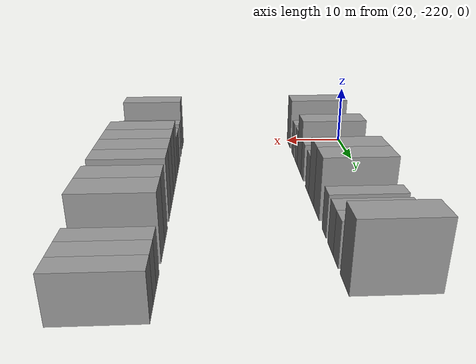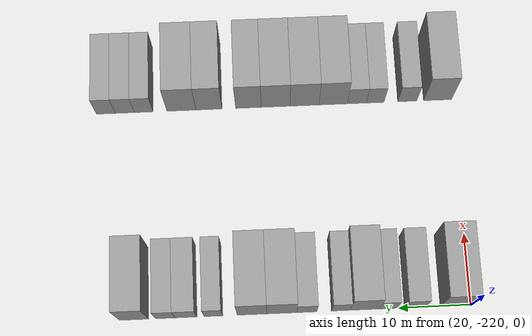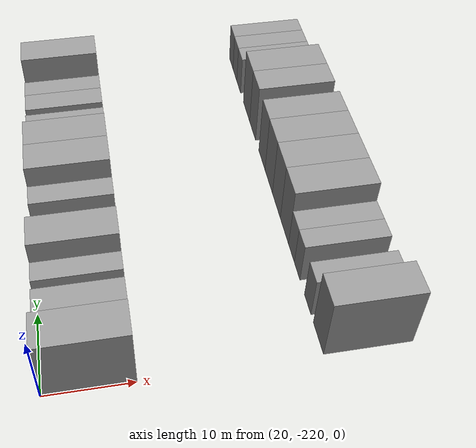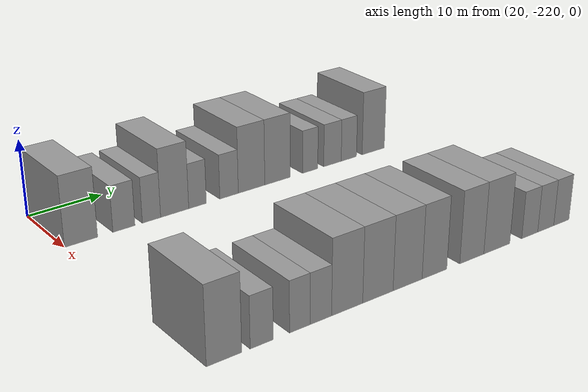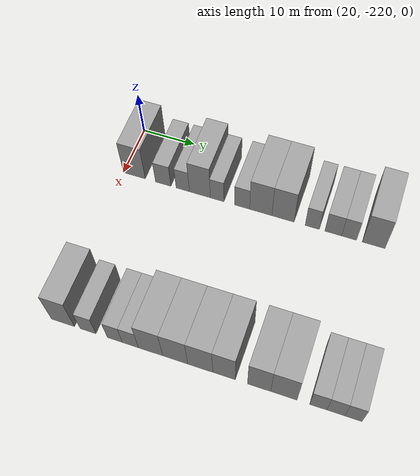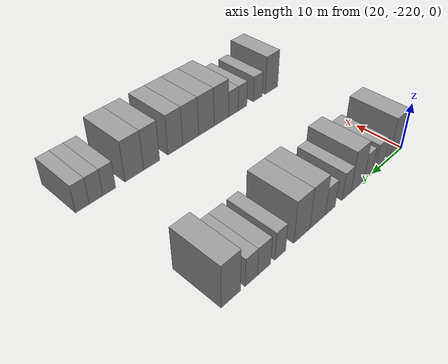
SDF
<sdf version="1.6">
 <world name="default">
  <model name="building_1">
   <static>1</static>
   <pose>25.0000 -217.8745 0 0.000000 0.000000 0.000000</pose>
   <link name="link">
    <pose>0 0 4.50 0 0 0</pose>
    <collision name="collision"><geometry><box><size>10.0000 4.2509 9.0000</size></box></geometry></collision>
    <visual name="visual">
     <cast_shadows>0</cast_shadows>
     <geometry><box><size>10.0000 4.2509 9.0000</size></box></geometry>
     <material>
      <script>
       <uri>model://grey_wall/materials/scripts</uri>
       <uri>model://grey_wall/materials/textures</uri>
       <name>vrc/grey_wall</name>
      </script>
     </material>
    </visual>
   </link>
  </model>
  <model name="building_2">
   <static>1</static>
   <pose>25.0000 -212.2686 0 0.000000 0.000000 0.000000</pose>
   <link name="link">
    <pose>0 0 3.00 0 0 0</pose>
    <collision name="collision"><geometry><box><size>10.0000 2.9609 6.0000</size></box></geometry></collision>
    <visual name="visual">
     <cast_shadows>0</cast_shadows>
     <geometry><box><size>10.0000 2.9609 6.0000</size></box></geometry>
     <material>
      <script>
       <uri>model://grey_wall/materials/scripts</uri>
       <uri>model://grey_wall/materials/textures</uri>
       <name>vrc/grey_wall</name>
      </script>
     </material>
    </visual>
   </link>
  </model>
  <model name="building_3">
   <static>1</static>
   <pose>25.0000 -208.5270 0 0.000000 0.000000 0.000000</pose>
   <link name="link">
    <pose>0 0 3.00 0 0 0</pose>
    <collision name="collision"><geometry><box><size>10.0000 2.5222 6.0000</size></box></geometry></collision>
    <visual name="visual">
     <cast_shadows>0</cast_shadows>
     <geometry><box><size>10.0000 2.5222 6.0000</size></box></geometry>
     <material>
      <script>
       <uri>model://grey_wall/materials/scripts</uri>
       <uri>model://grey_wall/materials/textures</uri>
       <name>vrc/grey_wall</name>
      </script>
     </material>
    </visual>
   </link>
  </model>
  <model name="building_4">
   <static>1</static>
   <pose>25.0000 -205.2757 0 0.000000 0.000000 0.000000</pose>
   <link name="link">
    <pose>0 0 4.50 0 0 0</pose>
    <collision name="collision"><geometry><box><size>10.0000 3.9805 9.0000</size></box></geometry></collision>
    <visual name="visual">
     <cast_shadows>0</cast_shadows>
     <geometry><box><size>10.0000 3.9805 9.0000</size></box></geometry>
     <material>
      <script>
       <uri>model://grey_wall/materials/scripts</uri>
       <uri>model://grey_wall/materials/textures</uri>
       <name>vrc/grey_wall</name>
      </script>
     </material>
    </visual>
   </link>
  </model>
  <model name="building_5">
   <static>1</static>
   <pose>25.0000 -202.0053 0 0.000000 0.000000 0.000000</pose>
   <link name="link">
    <pose>0 0 3.00 0 0 0</pose>
    <collision name="collision"><geometry><box><size>10.0000 2.5604 6.0000</size></box></geometry></collision>
    <visual name="visual">
     <cast_shadows>0</cast_shadows>
     <geometry><box><size>10.0000 2.5604 6.0000</size></box></geometry>
     <material>
      <script>
       <uri>model://grey_wall/materials/scripts</uri>
       <uri>model://grey_wall/materials/textures</uri>
       <name>vrc/grey_wall</name>
      </script>
     </material>
    </visual>
   </link>
  </model>
  <model name="building_6">
   <static>1</static>
   <pose>25.0000 -197.3337 0 0.000000 0.000000 0.000000</pose>
   <link name="link">
    <pose>0 0 3.00 0 0 0</pose>
    <collision name="collision"><geometry><box><size>10.0000 2.7827 6.0000</size></box></geometry></collision>
    <visual name="visual">
     <cast_shadows>0</cast_shadows>
     <geometry><box><size>10.0000 2.7827 6.0000</size></box></geometry>
     <material>
      <script>
       <uri>model://grey_wall/materials/scripts</uri>
       <uri>model://grey_wall/materials/textures</uri>
       <name>vrc/grey_wall</name>
      </script>
     </material>
    </visual>
   </link>
  </model>
  <model name="building_7">
   <static>1</static>
   <pose>25.0000 -193.8902 0 0.000000 0.000000 0.000000</pose>
   <link name="link">
    <pose>0 0 4.50 0 0 0</pose>
    <collision name="collision"><geometry><box><size>10.0000 4.1044 9.0000</size></box></geometry></collision>
    <visual name="visual">
     <cast_shadows>0</cast_shadows>
     <geometry><box><size>10.0000 4.1044 9.0000</size></box></geometry>
     <material>
      <script>
       <uri>model://grey_wall/materials/scripts</uri>
       <uri>model://grey_wall/materials/textures</uri>
       <name>vrc/grey_wall</name>
      </script>
     </material>
    </visual>
   </link>
  </model>
  <model name="building_8">
   <static>1</static>
   <pose>25.0000 -189.8039 0 0.000000 0.000000 0.000000</pose>
   <link name="link">
    <pose>0 0 4.50 0 0 0</pose>
    <collision name="collision"><geometry><box><size>10.0000 4.0681 9.0000</size></box></geometry></collision>
    <visual name="visual">
     <cast_shadows>0</cast_shadows>
     <geometry><box><size>10.0000 4.0681 9.0000</size></box></geometry>
     <material>
      <script>
       <uri>model://grey_wall/materials/scripts</uri>
       <uri>model://grey_wall/materials/textures</uri>
       <name>vrc/grey_wall</name>
      </script>
     </material>
    </visual>
   </link>
  </model>
  <model name="building_9">
   <static>1</static>
   <pose>25.0000 -184.4945 0 0.000000 0.000000 0.000000</pose>
   <link name="link">
    <pose>0 0 3.00 0 0 0</pose>
    <collision name="collision"><geometry><box><size>10.0000 2.5507 6.0000</size></box></geometry></collision>
    <visual name="visual">
     <cast_shadows>0</cast_shadows>
     <geometry><box><size>10.0000 2.5507 6.0000</size></box></geometry>
     <material>
      <script>
       <uri>model://grey_wall/materials/scripts</uri>
       <uri>model://grey_wall/materials/textures</uri>
       <name>vrc/grey_wall</name>
      </script>
     </material>
    </visual>
   </link>
  </model>
  <model name="building_10">
   <static>1</static>
   <pose>25.0000 -180.7242 0 0.000000 0.000000 0.000000</pose>
   <link name="link">
    <pose>0 0 3.00 0 0 0</pose>
    <collision name="collision"><geometry><box><size>10.0000 2.9899 6.0000</size></box></geometry></collision>
    <visual name="visual">
     <cast_shadows>0</cast_shadows>
     <geometry><box><size>10.0000 2.9899 6.0000</size></box></geometry>
     <material>
      <script>
       <uri>model://grey_wall/materials/scripts</uri>
       <uri>model://grey_wall/materials/textures</uri>
       <name>vrc/grey_wall</name>
      </script>
     </material>
    </visual>
   </link>
  </model>
  <model name="building_11">
   <static>1</static>
   <pose>25.0000 -177.8999 0 0.000000 0.000000 0.000000</pose>
   <link name="link">
    <pose>0 0 3.00 0 0 0</pose>
    <collision name="collision"><geometry><box><size>10.0000 2.6587 6.0000</size></box></geometry></collision>
    <visual name="visual">
     <cast_shadows>0</cast_shadows>
     <geometry><box><size>10.0000 2.6587 6.0000</size></box></geometry>
     <material>
      <script>
       <uri>model://grey_wall/materials/scripts</uri>
       <uri>model://grey_wall/materials/textures</uri>
       <name>vrc/grey_wall</name>
      </script>
     </material>
    </visual>
   </link>
  </model>
  <model name="building_12">
   <static>1</static>
   <pose>25.0000 -173.5764 0 0.000000 0.000000 0.000000</pose>
   <link name="link">
    <pose>0 0 4.50 0 0 0</pose>
    <collision name="collision"><geometry><box><size>10.0000 3.9884 9.0000</size></box></geometry></collision>
    <visual name="visual">
     <cast_shadows>0</cast_shadows>
     <geometry><box><size>10.0000 3.9884 9.0000</size></box></geometry>
     <material>
      <script>
       <uri>model://grey_wall/materials/scripts</uri>
       <uri>model://grey_wall/materials/textures</uri>
       <name>vrc/grey_wall</name>
      </script>
     </material>
    </visual>
   </link>
  </model>
  <model name="building_96">
   <static>1</static>
   <pose>55.0000 -217.9607 0 0.000000 0.000000 0.000000</pose>
   <link name="link">
    <pose>0 0 4.50 0 0 0</pose>
    <collision name="collision"><geometry><box><size>10.0000 4.0785 9.0000</size></box></geometry></collision>
    <visual name="visual">
     <cast_shadows>0</cast_shadows>
     <geometry><box><size>10.0000 4.0785 9.0000</size></box></geometry>
     <material>
      <script>
       <uri>model://grey_wall/materials/scripts</uri>
       <uri>model://grey_wall/materials/textures</uri>
       <name>vrc/grey_wall</name>
      </script>
     </material>
    </visual>
   </link>
  </model>
  <model name="building_97">
   <static>1</static>
   <pose>55.0000 -213.5329 0 0.000000 0.000000 0.000000</pose>
   <link name="link">
    <pose>0 0 3.00 0 0 0</pose>
    <collision name="collision"><geometry><box><size>10.0000 2.7772 6.0000</size></box></geometry></collision>
    <visual name="visual">
     <cast_shadows>0</cast_shadows>
     <geometry><box><size>10.0000 2.7772 6.0000</size></box></geometry>
     <material>
      <script>
       <uri>model://grey_wall/materials/scripts</uri>
       <uri>model://grey_wall/materials/textures</uri>
       <name>vrc/grey_wall</name>
      </script>
     </material>
    </visual>
   </link>
  </model>
  <model name="building_98">
   <static>1</static>
   <pose>55.0000 -208.8478 0 0.000000 0.000000 0.000000</pose>
   <link name="link">
    <pose>0 0 3.00 0 0 0</pose>
    <collision name="collision"><geometry><box><size>10.0000 2.5930 6.0000</size></box></geometry></collision>
    <visual name="visual">
     <cast_shadows>0</cast_shadows>
     <geometry><box><size>10.0000 2.5930 6.0000</size></box></geometry>
     <material>
      <script>
       <uri>model://grey_wall/materials/scripts</uri>
       <uri>model://grey_wall/materials/textures</uri>
       <name>vrc/grey_wall</name>
      </script>
     </material>
    </visual>
   </link>
  </model>
  <model name="building_99">
   <static>1</static>
   <pose>55.0000 -206.1656 0 0.000000 0.000000 0.000000</pose>
   <link name="link">
    <pose>0 0 3.00 0 0 0</pose>
    <collision name="collision"><geometry><box><size>10.0000 2.7714 6.0000</size></box></geometry></collision>
    <visual name="visual">
     <cast_shadows>0</cast_shadows>
     <geometry><box><size>10.0000 2.7714 6.0000</size></box></geometry>
     <material>
      <script>
       <uri>model://grey_wall/materials/scripts</uri>
       <uri>model://grey_wall/materials/textures</uri>
       <name>vrc/grey_wall</name>
      </script>
     </material>
    </visual>
   </link>
  </model>
  <model name="building_100">
   <static>1</static>
   <pose>55.0000 -202.7019 0 0.000000 0.000000 0.000000</pose>
   <link name="link">
    <pose>0 0 4.50 0 0 0</pose>
    <collision name="collision"><geometry><box><size>10.0000 4.1560 9.0000</size></box></geometry></collision>
    <visual name="visual">
     <cast_shadows>0</cast_shadows>
     <geometry><box><size>10.0000 4.1560 9.0000</size></box></geometry>
     <material>
      <script>
       <uri>model://grey_wall/materials/scripts</uri>
       <uri>model://grey_wall/materials/textures</uri>
       <name>vrc/grey_wall</name>
      </script>
     </material>
    </visual>
   </link>
  </model>
  <model name="building_101">
   <static>1</static>
   <pose>55.0000 -198.5149 0 0.000000 0.000000 0.000000</pose>
   <link name="link">
    <pose>0 0 4.50 0 0 0</pose>
    <collision name="collision"><geometry><box><size>10.0000 4.2180 9.0000</size></box></geometry></collision>
    <visual name="visual">
     <cast_shadows>0</cast_shadows>
     <geometry><box><size>10.0000 4.2180 9.0000</size></box></geometry>
     <material>
      <script>
       <uri>model://grey_wall/materials/scripts</uri>
       <uri>model://grey_wall/materials/textures</uri>
       <name>vrc/grey_wall</name>
      </script>
     </material>
    </visual>
   </link>
  </model>
  <model name="building_102">
   <static>1</static>
   <pose>55.0000 -194.3121 0 0.000000 0.000000 0.000000</pose>
   <link name="link">
    <pose>0 0 4.50 0 0 0</pose>
    <collision name="collision"><geometry><box><size>10.0000 4.1875 9.0000</size></box></geometry></collision>
    <visual name="visual">
     <cast_shadows>0</cast_shadows>
     <geometry><box><size>10.0000 4.1875 9.0000</size></box></geometry>
     <material>
      <script>
       <uri>model://grey_wall/materials/scripts</uri>
       <uri>model://grey_wall/materials/textures</uri>
       <name>vrc/grey_wall</name>
      </script>
     </material>
    </visual>
   </link>
  </model>
  <model name="building_103">
   <static>1</static>
   <pose>55.0000 -190.3692 0 0.000000 0.000000 0.000000</pose>
   <link name="link">
    <pose>0 0 4.50 0 0 0</pose>
    <collision name="collision"><geometry><box><size>10.0000 3.6983 9.0000</size></box></geometry></collision>
    <visual name="visual">
     <cast_shadows>0</cast_shadows>
     <geometry><box><size>10.0000 3.6983 9.0000</size></box></geometry>
     <material>
      <script>
       <uri>model://grey_wall/materials/scripts</uri>
       <uri>model://grey_wall/materials/textures</uri>
       <name>vrc/grey_wall</name>
      </script>
     </material>
    </visual>
   </link>
  </model>
  <model name="building_104">
   <static>1</static>
   <pose>55.0000 -184.6356 0 0.000000 0.000000 0.000000</pose>
   <link name="link">
    <pose>0 0 4.50 0 0 0</pose>
    <collision name="collision"><geometry><box><size>10.0000 3.7689 9.0000</size></box></geometry></collision>
    <visual name="visual">
     <cast_shadows>0</cast_shadows>
     <geometry><box><size>10.0000 3.7689 9.0000</size></box></geometry>
     <material>
      <script>
       <uri>model://grey_wall/materials/scripts</uri>
       <uri>model://grey_wall/materials/textures</uri>
       <name>vrc/grey_wall</name>
      </script>
     </material>
    </visual>
   </link>
  </model>
  <model name="building_105">
   <static>1</static>
   <pose>55.0000 -180.6331 0 0.000000 0.000000 0.000000</pose>
   <link name="link">
    <pose>0 0 4.50 0 0 0</pose>
    <collision name="collision"><geometry><box><size>10.0000 4.2362 9.0000</size></box></geometry></collision>
    <visual name="visual">
     <cast_shadows>0</cast_shadows>
     <geometry><box><size>10.0000 4.2362 9.0000</size></box></geometry>
     <material>
      <script>
       <uri>model://grey_wall/materials/scripts</uri>
       <uri>model://grey_wall/materials/textures</uri>
       <name>vrc/grey_wall</name>
      </script>
     </material>
    </visual>
   </link>
  </model>
  <model name="building_106">
   <static>1</static>
   <pose>55.0000 -175.1534 0 0.000000 0.000000 0.000000</pose>
   <link name="link">
    <pose>0 0 3.00 0 0 0</pose>
    <collision name="collision"><geometry><box><size>10.0000 2.7232 6.0000</size></box></geometry></collision>
    <visual name="visual">
     <cast_shadows>0</cast_shadows>
     <geometry><box><size>10.0000 2.7232 6.0000</size></box></geometry>
     <material>
      <script>
       <uri>model://grey_wall/materials/scripts</uri>
       <uri>model://grey_wall/materials/textures</uri>
       <name>vrc/grey_wall</name>
      </script>
     </material>
    </visual>
   </link>
  </model>
  <model name="building_107">
   <static>1</static>
   <pose>55.0000 -172.3982 0 0.000000 0.000000 0.000000</pose>
   <link name="link">
    <pose>0 0 3.00 0 0 0</pose>
    <collision name="collision"><geometry><box><size>10.0000 2.7871 6.0000</size></box></geometry></collision>
    <visual name="visual">
     <cast_shadows>0</cast_shadows>
     <geometry><box><size>10.0000 2.7871 6.0000</size></box></geometry>
     <material>
      <script>
       <uri>model://grey_wall/materials/scripts</uri>
       <uri>model://grey_wall/materials/textures</uri>
       <name>vrc/grey_wall</name>
      </script>
     </material>
    </visual>
   </link>
  </model>
  <model name="building_108">
   <static>1</static>
   <pose>55.0000 -169.6443 0 0.000000 0.000000 0.000000</pose>
   <link name="link">
    <pose>0 0 3.00 0 0 0</pose>
    <collision name="collision"><geometry><box><size>10.0000 2.7206 6.0000</size></box></geometry></collision>
    <visual name="visual">
     <cast_shadows>0</cast_shadows>
     <geometry><box><size>10.0000 2.7206 6.0000</size></box></geometry>
     <material>
      <script>
       <uri>model://grey_wall/materials/scripts</uri>
       <uri>model://grey_wall/materials/textures</uri>
       <name>vrc/grey_wall</name>
      </script>
     </material>
    </visual>
   </link>
  </model>
 </world>
</sdf>
